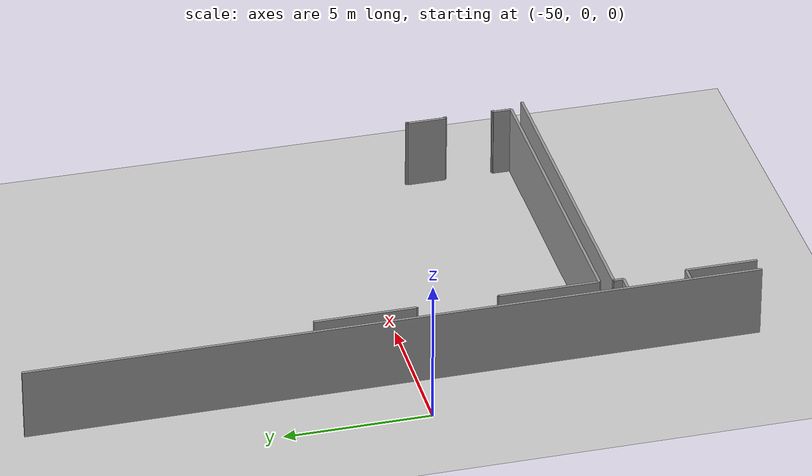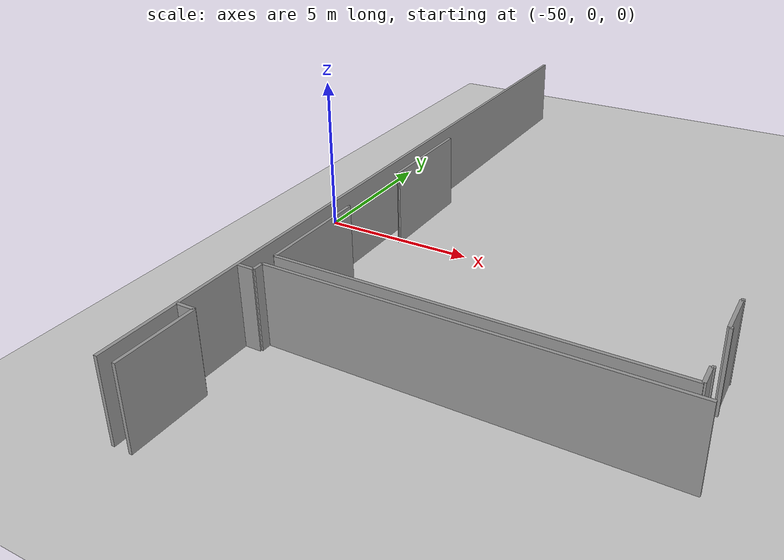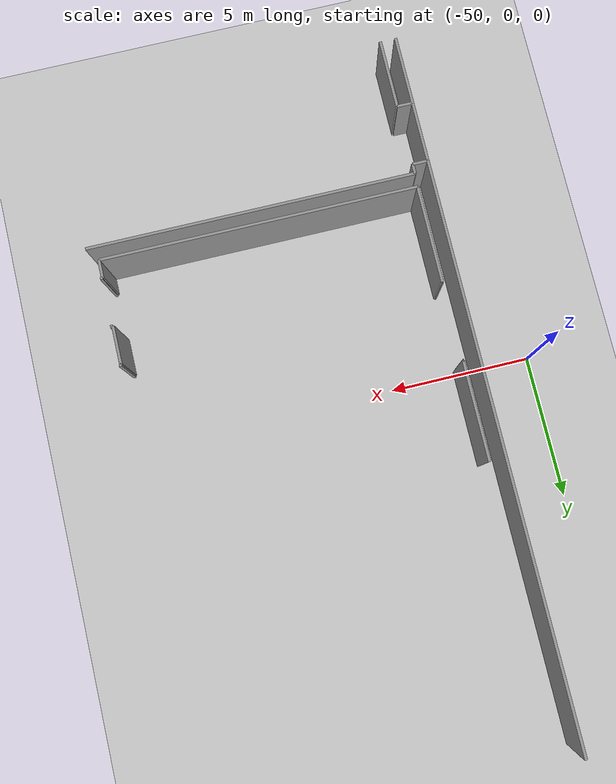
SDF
<sdf version="1.6">
 <world name="default">
  <model name="ground_plane">
   <static>1</static>
   <link name="link">
    <collision name="collision">
     <geometry><plane><normal>0 0 1</normal><size>100 100</size></plane></geometry>
     <surface><friction><ode><mu>100</mu><mu2>50</mu2></ode></friction></surface>
    </collision>
    <visual name="visual">
     <cast_shadows>0</cast_shadows>
     <geometry><plane><normal>0 0 1</normal><size>100 100</size></plane></geometry>
     <material>
      <script><uri>file://media/materials/scripts/gazebo.material</uri><name>Gazebo/Grey</name></script>
     </material>
    </visual>
   </link>
  </model>
  <model name="0510032258_A_40_1_105">
   <static>1</static>
   <link name="Wall_14">
    <collision name="Wall_14_Collision">
     <geometry><box><size>3.4490293729 0.1 2.5</size></box></geometry>
     <pose>1.72451468645 0 1.25 0 0 0</pose>
    </collision>
    <visual name="Wall_14_Visual">
     <pose>1.72451468645 0 1.25 0 0 0</pose>
     <geometry><box><size>3.4490293729 0.1 2.5</size></box></geometry>
     <material>
      <script><uri>file://media/materials/scripts/gazebo.material</uri><name>Gazebo/Grey</name></script>
      <ambient>1 1 1 1</ambient>
     </material>
    </visual>
    <pose>0.575007622726 -19.5164650879 0 0 0 1.57079632679</pose>
   </link>
   <link name="Wall_15">
    <collision name="Wall_15_Collision">
     <geometry><box><size>0.0303638581157 0.1 2.5</size></box></geometry>
     <pose>0.0151819290578 0 1.25 0 0 0</pose>
    </collision>
    <visual name="Wall_15_Visual">
     <pose>0.0151819290578 0 1.25 0 0 0</pose>
     <geometry><box><size>0.0303638581157 0.1 2.5</size></box></geometry>
     <material>
      <script><uri>file://media/materials/scripts/gazebo.material</uri><name>Gazebo/Grey</name></script>
      <ambient>1 1 1 1</ambient>
     </material>
    </visual>
    <pose>0.575007622726 -16.067435715 0 0 0 3.14159265359</pose>
   </link>
   <link name="Wall_16">
    <collision name="Wall_16_Collision">
     <geometry><box><size>0.0204543144629 0.1 2.5</size></box></geometry>
     <pose>0.0102271572314 0 1.25 0 0 0</pose>
    </collision>
    <visual name="Wall_16_Visual">
     <pose>0.0102271572314 0 1.25 0 0 0</pose>
     <geometry><box><size>0.0204543144629 0.1 2.5</size></box></geometry>
     <material>
      <script><uri>file://media/materials/scripts/gazebo.material</uri><name>Gazebo/Grey</name></script>
      <ambient>1 1 1 1</ambient>
     </material>
    </visual>
    <pose>0.54464376461 -13.2870464478 0 0 0 0.0</pose>
   </link>
   <link name="Wall_17">
    <collision name="Wall_17_Collision">
     <geometry><box><size>3.47177050513 0.1 2.5</size></box></geometry>
     <pose>1.73588525257 0 1.25 0 0 0</pose>
    </collision>
    <visual name="Wall_17_Visual">
     <pose>1.73588525257 0 1.25 0 0 0</pose>
     <geometry><box><size>3.47177050513 0.1 2.5</size></box></geometry>
     <material>
      <script><uri>file://media/materials/scripts/gazebo.material</uri><name>Gazebo/Grey</name></script>
      <ambient>1 1 1 1</ambient>
     </material>
    </visual>
    <pose>0.565098079073 -13.2870464478 0 0 0 1.57079632679</pose>
   </link>
   <link name="Wall_27">
    <collision name="Wall_27_Collision">
     <geometry><box><size>0.0767354405936 0.1 2.5</size></box></geometry>
     <pose>0.0383677202968 0 1.25 0 0 0</pose>
    </collision>
    <visual name="Wall_27_Visual">
     <pose>0.0383677202968 0 1.25 0 0 0</pose>
     <geometry><box><size>0.0767354405936 0.1 2.5</size></box></geometry>
     <material>
      <script><uri>file://media/materials/scripts/gazebo.material</uri><name>Gazebo/Grey</name></script>
      <ambient>1 1 1 1</ambient>
     </material>
    </visual>
    <pose>11.7496696819 -15.7446132737 0 0 0 -1.57079632679</pose>
   </link>
   <link name="Wall_28">
    <collision name="Wall_28_Collision">
     <geometry><box><size>0.022487041366 0.1 2.5</size></box></geometry>
     <pose>0.011243520683 0 1.25 0 0 0</pose>
    </collision>
    <visual name="Wall_28_Visual">
     <pose>0.011243520683 0 1.25 0 0 0</pose>
     <geometry><box><size>0.022487041366 0.1 2.5</size></box></geometry>
     <material>
      <script><uri>file://media/materials/scripts/gazebo.material</uri><name>Gazebo/Grey</name></script>
      <ambient>1 1 1 1</ambient>
     </material>
    </visual>
    <pose>11.7496696819 -15.8213487143 0 0 0 3.14159265359</pose>
   </link>
   <link name="Wall_29">
    <collision name="Wall_29_Collision">
     <geometry><box><size>1.3352474845 0.1 2.5</size></box></geometry>
     <pose>0.66762374225 0 1.25 0 0 0</pose>
    </collision>
    <visual name="Wall_29_Visual">
     <pose>0.66762374225 0 1.25 0 0 0</pose>
     <geometry><box><size>1.3352474845 0.1 2.5</size></box></geometry>
     <material>
      <script><uri>file://media/materials/scripts/gazebo.material</uri><name>Gazebo/Grey</name></script>
      <ambient>1 1 1 1</ambient>
     </material>
    </visual>
    <pose>11.7271826405 -15.8213487143 0 0 0 -1.57079632679</pose>
   </link>
   <link name="Wall_30">
    <collision name="Wall_30_Collision">
     <geometry><box><size>0.0898211200325 0.1 2.5</size></box></geometry>
     <pose>0.0449105600163 0 1.25 0 0 0</pose>
    </collision>
    <visual name="Wall_30_Visual">
     <pose>0.0449105600163 0 1.25 0 0 0</pose>
     <geometry><box><size>0.0898211200325 0.1 2.5</size></box></geometry>
     <material>
      <script><uri>file://media/materials/scripts/gazebo.material</uri><name>Gazebo/Grey</name></script>
      <ambient>1 1 1 1</ambient>
     </material>
    </visual>
    <pose>11.7271826405 -17.1565961988 0 0 0 0.0</pose>
   </link>
   <link name="Wall_34">
    <collision name="Wall_34_Collision">
     <geometry><box><size>0.087407256835 0.1 2.5</size></box></geometry>
     <pose>0.0437036284175 0 1.25 0 0 0</pose>
    </collision>
    <visual name="Wall_34_Visual">
     <pose>0.0437036284175 0 1.25 0 0 0</pose>
     <geometry><box><size>0.087407256835 0.1 2.5</size></box></geometry>
     <material>
      <script><uri>file://media/materials/scripts/gazebo.material</uri><name>Gazebo/Grey</name></script>
      <ambient>1 1 1 1</ambient>
     </material>
    </visual>
    <pose>11.8170037605 -18.8656113426 0 0 0 3.14159265359</pose>
   </link>
   <link name="Wall_35">
    <collision name="Wall_35_Collision">
     <geometry><box><size>0.642468746824 0.1 2.5</size></box></geometry>
     <pose>0.321234373412 0 1.25 0 0 0</pose>
    </collision>
    <visual name="Wall_35_Visual">
     <pose>0.321234373412 0 1.25 0 0 0</pose>
     <geometry><box><size>0.642468746824 0.1 2.5</size></box></geometry>
     <material>
      <script><uri>file://media/materials/scripts/gazebo.material</uri><name>Gazebo/Grey</name></script>
      <ambient>1 1 1 1</ambient>
     </material>
    </visual>
    <pose>11.7295965037 -18.8656113426 0 0 0 -1.57079632679</pose>
   </link>
   <link name="Wall_36">
    <collision name="Wall_36_Collision">
     <geometry><box><size>11.1545920325 0.1 2.5</size></box></geometry>
     <pose>5.57729601626 0 1.25 0 0 0</pose>
    </collision>
    <visual name="Wall_36_Visual">
     <pose>5.57729601626 0 1.25 0 0 0</pose>
     <geometry><box><size>11.1545920325 0.1 2.5</size></box></geometry>
     <material>
      <script><uri>file://media/materials/scripts/gazebo.material</uri><name>Gazebo/Grey</name></script>
      <ambient>1 1 1 1</ambient>
     </material>
    </visual>
    <pose>11.7295965037 -19.5080800894 0 0 0 -3.1408409453</pose>
   </link>
   <link name="Wall_98">
    <collision name="Wall_98_Collision">
     <geometry><box><size>2.45566114443 0.1 2.5</size></box></geometry>
     <pose>1.22783057221 0 1.25 0 0 0</pose>
    </collision>
    <visual name="Wall_98_Visual">
     <pose>1.22783057221 0 1.25 0 0 0</pose>
     <geometry><box><size>2.45566114443 0.1 2.5</size></box></geometry>
     <material>
      <script><uri>file://media/materials/scripts/gazebo.material</uri><name>Gazebo/Grey</name></script>
      <ambient>1 1 1 1</ambient>
     </material>
    </visual>
    <pose>0.551758308771 -24.9512145543 0 0 0 1.57079632679</pose>
   </link>
   <link name="Wall_99">
    <collision name="Wall_99_Collision">
     <geometry><box><size>0.551758308771 0.1 2.5</size></box></geometry>
     <pose>0.275879154386 0 1.25 0 0 0</pose>
    </collision>
    <visual name="Wall_99_Visual">
     <pose>0.275879154386 0 1.25 0 0 0</pose>
     <geometry><box><size>0.551758308771 0.1 2.5</size></box></geometry>
     <material>
      <script><uri>file://media/materials/scripts/gazebo.material</uri><name>Gazebo/Grey</name></script>
      <ambient>1 1 1 1</ambient>
     </material>
    </visual>
    <pose>0.551758308771 -22.4955534099 0 0 0 3.14159265359</pose>
   </link>
   <link name="Wall_100">
    <collision name="Wall_100_Collision">
     <geometry><box><size>0.540959447098 0.1 2.5</size></box></geometry>
     <pose>0.270479723549 0 1.25 0 0 0</pose>
    </collision>
    <visual name="Wall_100_Visual">
     <pose>0.270479723549 0 1.25 0 0 0</pose>
     <geometry><box><size>0.540959447098 0.1 2.5</size></box></geometry>
     <material>
      <script><uri>file://media/materials/scripts/gazebo.material</uri><name>Gazebo/Grey</name></script>
      <ambient>1 1 1 1</ambient>
     </material>
    </visual>
    <pose>0.0 -20.3357810753 0 0 0 0.0</pose>
   </link>
   <link name="Wall_101">
    <collision name="Wall_101_Collision">
     <geometry><box><size>0.340735847139 0.1 2.5</size></box></geometry>
     <pose>0.170367923569 0 1.25 0 0 0</pose>
    </collision>
    <visual name="Wall_101_Visual">
     <pose>0.170367923569 0 1.25 0 0 0</pose>
     <geometry><box><size>0.340735847139 0.1 2.5</size></box></geometry>
     <material>
      <script><uri>file://media/materials/scripts/gazebo.material</uri><name>Gazebo/Grey</name></script>
      <ambient>1 1 1 1</ambient>
     </material>
    </visual>
    <pose>0.540959447098 -20.3357810753 0 0 0 1.57079632679</pose>
   </link>
   <link name="Wall_102">
    <collision name="Wall_102_Collision">
     <geometry><box><size>11.5597367619 0.1 2.5</size></box></geometry>
     <pose>5.77986838093 0 1.25 0 0 0</pose>
    </collision>
    <visual name="Wall_102_Visual">
     <pose>5.77986838093 0 1.25 0 0 0</pose>
     <geometry><box><size>11.5597367619 0.1 2.5</size></box></geometry>
     <material>
      <script><uri>file://media/materials/scripts/gazebo.material</uri><name>Gazebo/Grey</name></script>
      <ambient>1 1 1 1</ambient>
     </material>
    </visual>
    <pose>0.540959447098 -19.9950452282 0 0 0 0.0</pose>
   </link>
   <link name="Wall_395">
    <collision name="Wall_395_Collision">
     <geometry><box><size>24.9512145543 0.1 2.5</size></box></geometry>
     <pose>12.4756072772 0 1.25 0 0 0</pose>
    </collision>
    <visual name="Wall_395_Visual">
     <pose>12.4756072772 0 1.25 0 0 0</pose>
     <geometry><box><size>24.9512145543 0.1 2.5</size></box></geometry>
     <material>
      <script><uri>file://media/materials/scripts/gazebo.material</uri><name>Gazebo/Grey</name></script>
      <ambient>1 1 1 1</ambient>
     </material>
    </visual>
    <pose>0.0 -24.9512145543 0 0 0 1.57079632679</pose>
   </link>
   <pose>-47.9 13.1512145543 0 0 0 0</pose>
  </model>
 </world>
</sdf>
